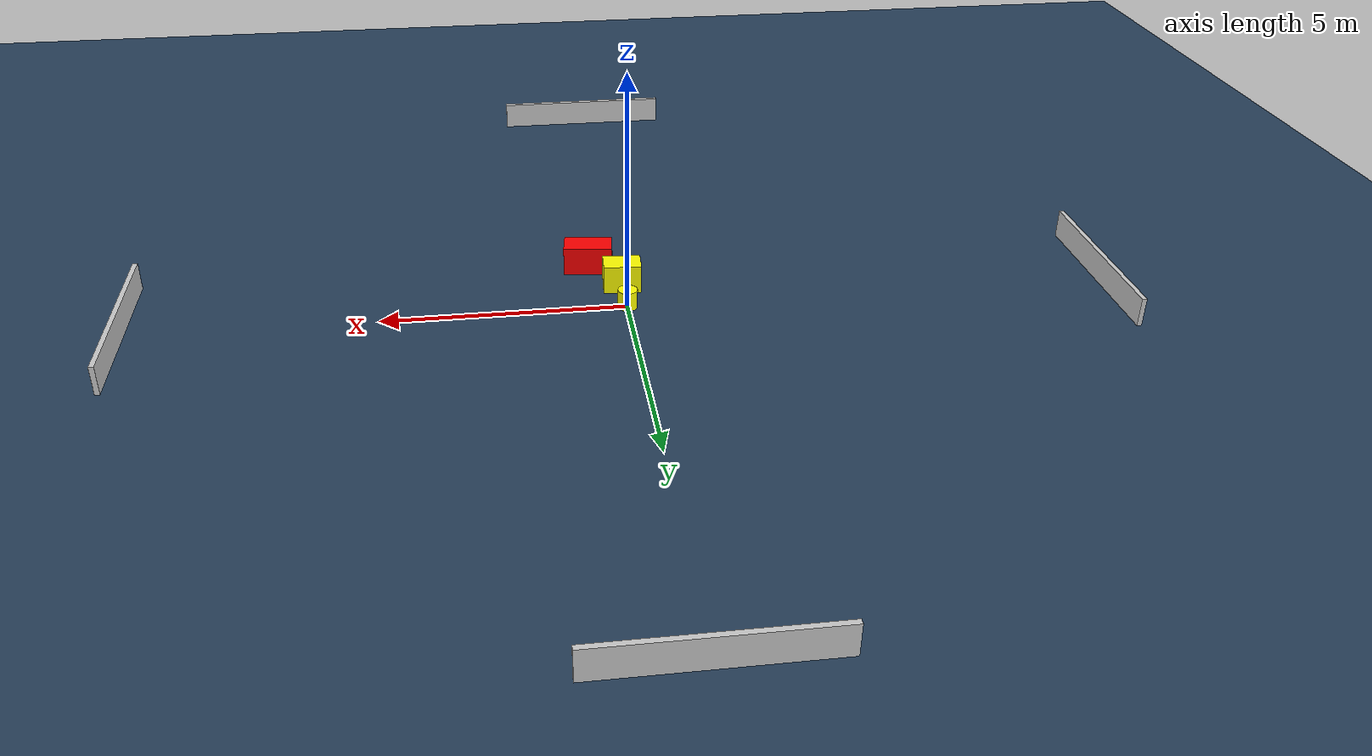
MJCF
<?xml version="1.0" ?>
<mujoco model="generated_environment">
  <option timestep="0.01" integrator="RK4" cone="elliptic"/>
  <default>
    <geom density="1"/>
  </default>
  <asset>
    <texture builtin="gradient" height="3072" name="skybox" rgb1="0.3 0.5 0.7" rgb2="0 0 0" type="skybox" width="512"/>
    <texture builtin="checker" height="300" name="groundplane" rgb1="0.2 0.3 0.4" rgb2="0.1 0.2 0.3" type="2d" width="300"/>
    <material name="groundplane" reflectance="0.2" texrepeat="5 5" texture="groundplane"/>
  </asset>
  <worldbody>
    <light dir="0 0 -1" directional="true" pos="0 0 1.5"/>
    <geom condim="3" friction="0.5 0.005 0.001" material="groundplane" name="floor" pos="0 0 0" size="0 0 0.05" type="plane"/>
    <body name="walls">
      <geom name="wall_1" condim="4" pos="-10.0 0.0 0.3" rgba="0.800000011920929 0.800000011920929 0.800000011920929 1.0" size="0.05 2.0 0.3" type="box"/>
      <geom name="wall_2" condim="4" pos="10.0 0.0 0.3" rgba="0.800000011920929 0.800000011920929 0.800000011920929 1.0" size="0.05 2.0 0.3" type="box"/>
      <geom name="wall_3" condim="4" pos="0.0 -10.0 0.3" rgba="0.800000011920929 0.800000011920929 0.800000011920929 1.0" size="2.0 0.05 0.3" type="box"/>
      <geom name="wall_4" condim="4" pos="0.0 10.0 0.3" rgba="0.800000011920929 0.800000011920929 0.800000011920929 1.0" size="2.0 0.05 0.3" type="box"/>
    </body>
    <body name="robot">
      <joint name="joint_x" type="slide" pos="0 0 0" axis="1 0 0"/>
      <joint name="joint_y" type="slide" pos="0 0 0" axis="0 1 0"/>
      <geom name="robot" type="cylinder" pos="0.0 0.0 0.2" size="0.2 0.2 0.0" mass="5.0" friction="1.0 0.005 0.0001" condim="4" rgba="1.0 1.0 0.0 1.0"/>
    </body>
    <body name="obstacle_1_movable">
      <geom name="obstacle_1_movable" condim="4" pos="0.015995160459136036 -0.8387913511410733 0.3" euler="0 0 176.93609524532008" friction="0.0 0.005 0.001" rgba="1.0 1.0 0.0 1.0" size="0.38960473759615577 0.25755950722988624 0.3" type="box" mass="0.1"/>
      <joint type="free"/>
    </body>
    <body name="obstacle_2_static">
      <geom name="obstacle_2_static" condim="4" pos="0.6343331235987605 -1.7445187300500877 0.3" euler="0 0 262.6045465540294" friction="0.0 0.005 0.001" rgba="1.0 0.0 0.0 1.0" size="0.2825617618967713 0.5064491527150872 0.3" type="box"/>
    </body>
  </worldbody>
  <actuator>
    <motor name="actuator_x" joint="joint_x" gear="1" ctrlrange="-1 1"/>
    <motor name="actuator_y" joint="joint_y" gear="1" ctrlrange="-1 1"/>
  </actuator>
</mujoco>
